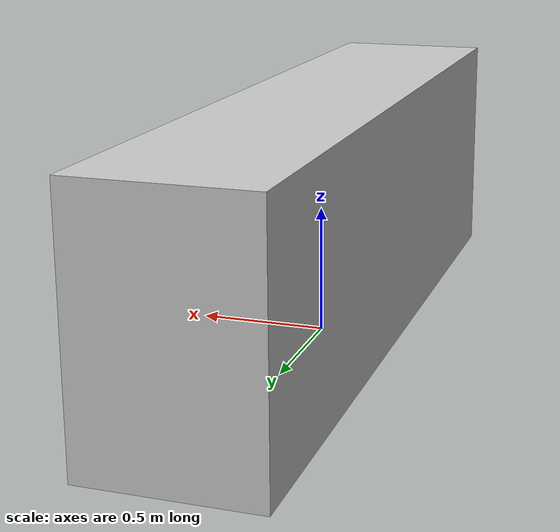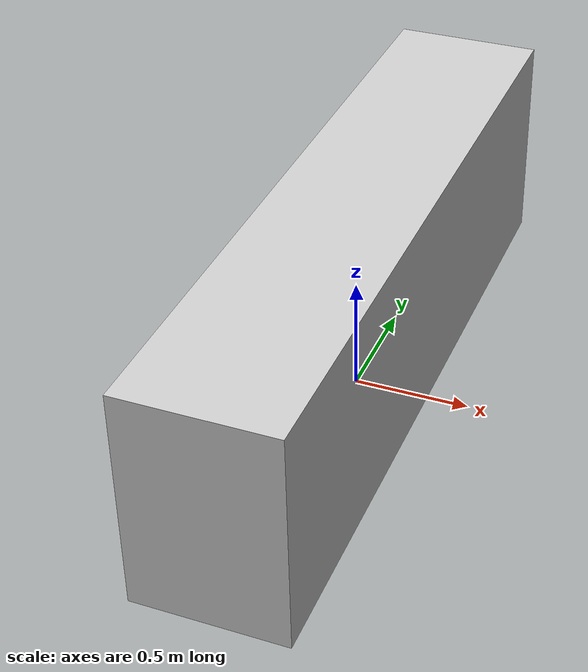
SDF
<?xml version="1.0"?>
<sdf version="1.6">
  <model name="rwc2013/kitchen_countertop">
    <link name="1_link">
      <collision name="1_col">
        <geometry>
          <box>
            <size>0.642 2.989 0.95</size>
          </box>
        </geometry>
      </collision>
      <visual name="1_vis">
        <geometry>
          <box>
            <size>0.642 2.989 0.95</size>
          </box>
        </geometry>
        <material>
          <ambient>0.8 0.8 0.8 1</ambient>
        </material>
      </visual>
      <pose>0.0 0.0 0.475 0 0 0</pose>
    </link>
    <static>true</static>
  </model>
</sdf>
